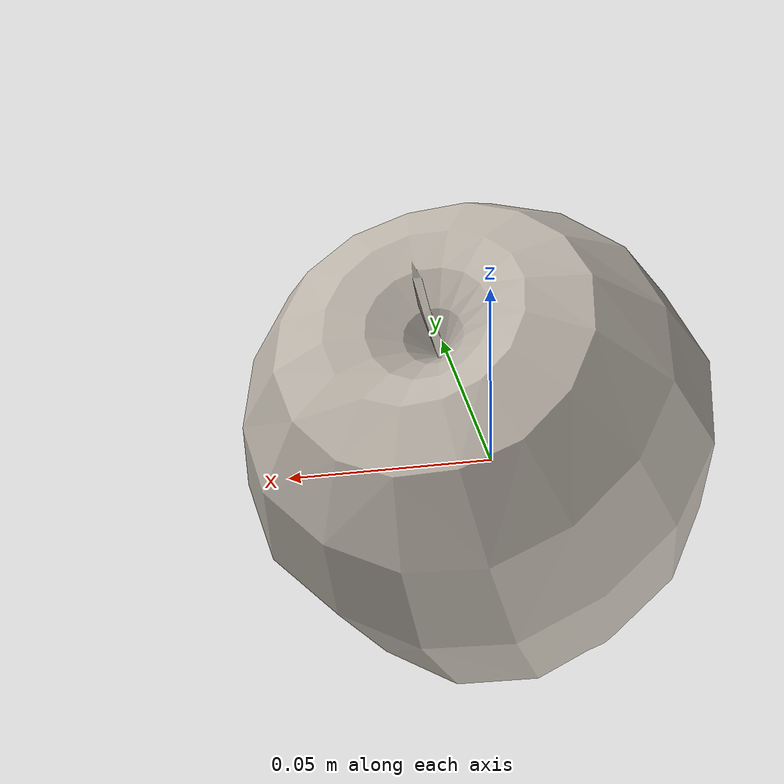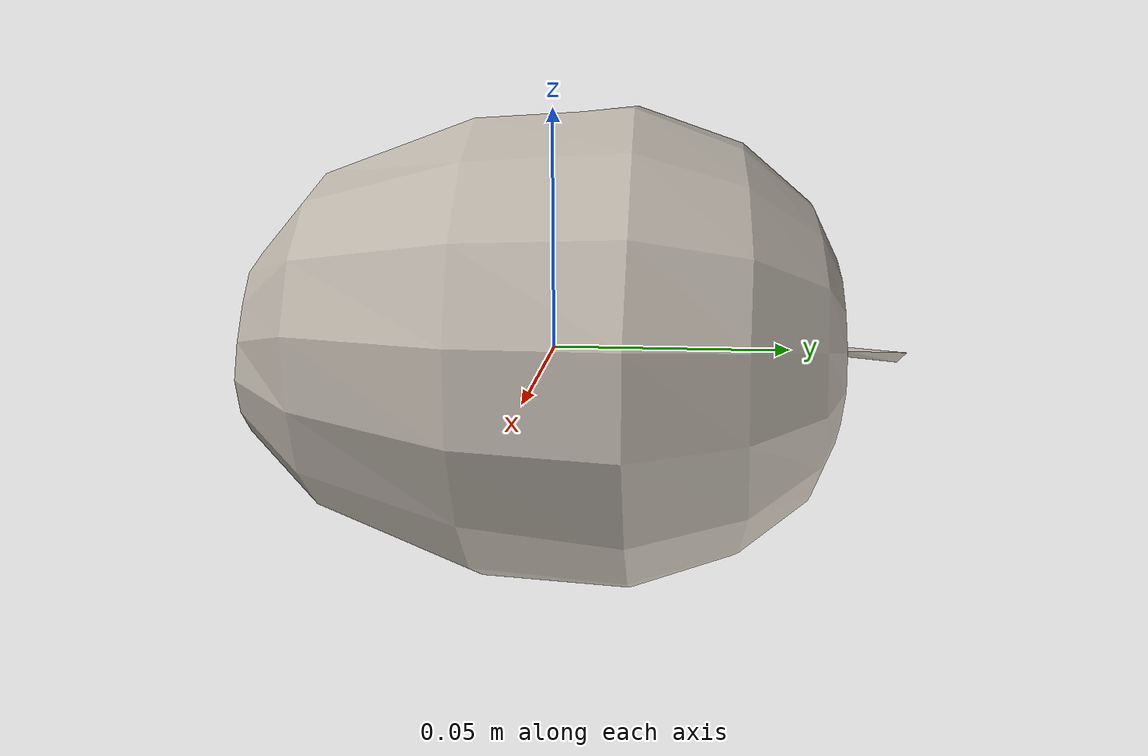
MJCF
<mujoco model="Apple_11">
  <compiler autolimits="true" boundmass="0.01" angle="radian"/>
  <default>
    <default class="/">
      <default class="__VISUAL_MJT__">
        <geom contype="0" conaffinity="0" group="0"/>
      </default>
      <default class="__STRUCTURAL_MJT__">
        <geom contype="8" conaffinity="15" group="4" friction="0.90000000000000002 0.90000000000000002 0.001" solref="0.025000000000000001 1" solimp="0.998 0.998 0.001"/>
      </default>
      <default class="__DYNAMIC_MJT__">
        <geom contype="1" conaffinity="15" group="4" friction="0.90000000000000002 0.90000000000000002 0.001" solref="0.025000000000000001 1" solimp="0.998 0.998 0.001"/>
      </default>
    </default>
  </default>
  <asset>
    <texture name="Apple1_Mat3" type="2d" file="Apple1_AlbedoTransparency3.png"/>
    <material name="material_Apple1_Mat3" class="/" texture="Apple1_Mat3" specular="0.5" shininess="0.5" rgba="1 1 1 1"/>
    <mesh name="Apple_11_apple_a11" class="/" file="Apple_11_apple_a11/Apple_11_apple_a11.obj" scale="1 1 1"/>
  </asset>
  <worldbody>
    <body name="Apple_11">
      <joint name="Apple_11_free" class="/" type="free" pos="0 0 0" axis="0 0 1" stiffness="0" range="0 0" armature="0" damping="0.10000000000000001" frictionloss="0"/>
      <body name="Apple_11_apple_a11" pos="-0 0.0051500000000000001 0" quat="1 0 0 0">
        <geom name="Apple_11_apple_a11" class="__VISUAL_MJT__" type="mesh" material="material_Apple1_Mat3" shellinertia="false" mesh="Apple_11_apple_a11"/>
        <geom name="Apple_11_PrimitiveCollider_0" class="__DYNAMIC_MJT__" type="capsule" size="0.052322585135698318 0.014310445636510849" rgba="0 1 0 1" pos="-0 -0.0051540583372116089 0" quat="0.70710678118654757 0.70710678118654746 0 0"/>
      </body>
    </body>
  </worldbody>
</mujoco>
